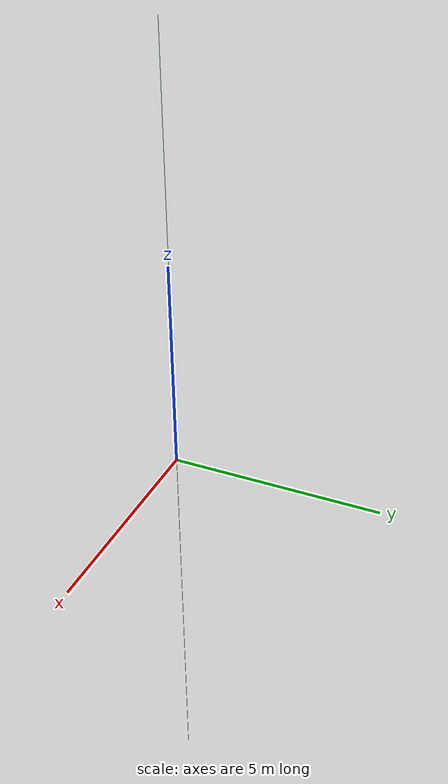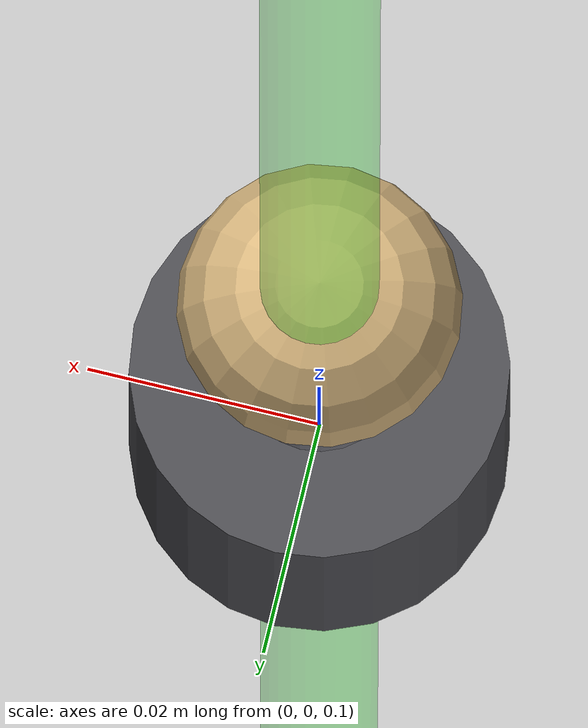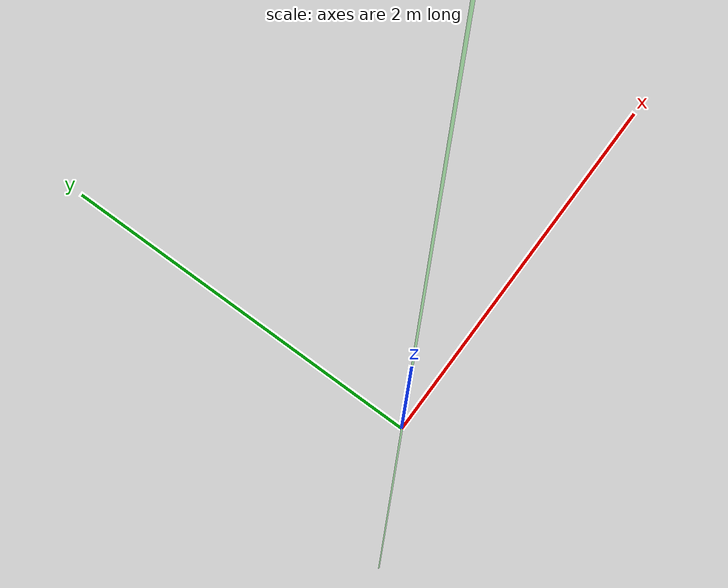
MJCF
<mujoco model="piper_wiper">
  <compiler angle="radian"/>

  <worldbody>
    <body name="piper_hand" pos="0 0 0.13503" quat="1 0 0 0" gravcomp="1">
      <inertial pos="0 0 -0.02" mass="0.05" diaginertia="1e-5 1e-5 1e-5"/>

      <!-- TCP 参考（与 gripper.xml 逐字一致）: 指尖垫接触面中点。
           姿态 quat="0 0 1 0"（绕 y 180°）: site z = 腕部→指尖的逼近方向,
           y = 原手指开合轴。冻结引擎的 IK/FK 全锚在这个 site 上, 勿动。 -->
      <body name="eef" pos="0 0 -0.045" quat="0 0 1 0">
        <site name="grip_site" pos="0 0 0" size="0.01 0.01 0.01" rgba="1 0 0 0.5" type="sphere" group="1"/>
        <site name="ee_x" pos="0.05 0 0" size="0.004 .05" quat="0.707105 0 0.707108 0" rgba="1 0 0 0" type="cylinder" group="1"/>
        <site name="ee_y" pos="0 0.05 0" size="0.004 .05" quat="0.707105 0.707108 0 0" rgba="0 1 0 0" type="cylinder" group="1"/>
        <site name="ee_z" pos="0 0 0.05" size="0.004 .05" quat="1 0 0 0" rgba="0 0 1 0" type="cylinder" group="1"/>
        <site name="grip_site_cylinder" pos="0 0 0" size="0.005 10" rgba="0 1 0 0.3" type="cylinder" group="1"/>
      </body>

      <!-- 指体（接口兼容层）: 关节/惯量保留（观测与执行器语义不变）, 几何已拆 -->
      <body name="link7" pos="0 0 0" quat="1.89468e-08 1.89469e-08 0.707108 0.707105" gravcomp="1">
        <inertial pos="-0.000277778 -0.0467673 -0.00921029" quat="0.46134 0.536174 -0.553273 0.439968"
          mass="0.0264823" diaginertia="0.001 0.001 0.001"/>
        <joint name="joint7" axis="0 0 -1" type="slide" range="0 0.035" frictionloss="0"/>
      </body>
      <body name="link8" pos="0 0 0" quat="1.89468e-08 -1.89469e-08 -0.707108 0.707105" gravcomp="1">
        <inertial pos="0.000277817 0.0467674 -0.0092103" quat="0.553273 0.439968 -0.46134 0.536174"
          mass="0.0264822" diaginertia="0.001 0.001 0.001"/>
        <joint name="joint8" axis="0 0 1" type="slide" range="-0.035 0" frictionloss="0"/>
      </body>

      <geom name="wiper_handle" type="cylinder" pos="0 0 -0.025" size="0.016 0.020"
        density="0" rgba="0.30 0.30 0.32 1"/>
      <geom name="wiper_stem" type="cylinder" pos="0 0 0.012" size="0.007 0.017"
        density="0" rgba="0.45 0.45 0.48 1"/>
      <geom name="wiper_ball" type="sphere" pos="0 0 0.029" size="0.012"
        density="0" condim="3" solimp="0.2 0.9 0.01" solmix="10000" solref="0.05 1"
        friction="0.001 0.005 0.0001" rgba="0.85 0.72 0.50 1"/>
    </body>
  </worldbody>

  <actuator>
    <!-- 与 gripper.xml 逐字一致（冻结引擎直写 ctrl 目标） -->
    <position name="gripper" joint="joint7" kp="120" kv="5" forcerange="-10 10"
      ctrllimited="true" ctrlrange="0 0.035"/>
  </actuator>

  <equality>
    <joint joint1="joint8" joint2="joint7" polycoef="0 -1 0 0 0"/>
  </equality>
</mujoco>
